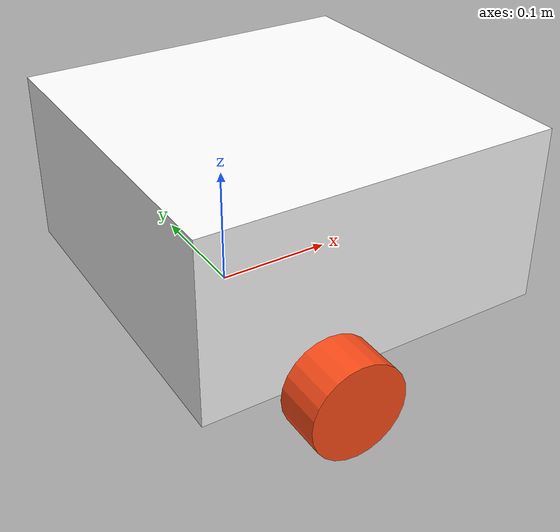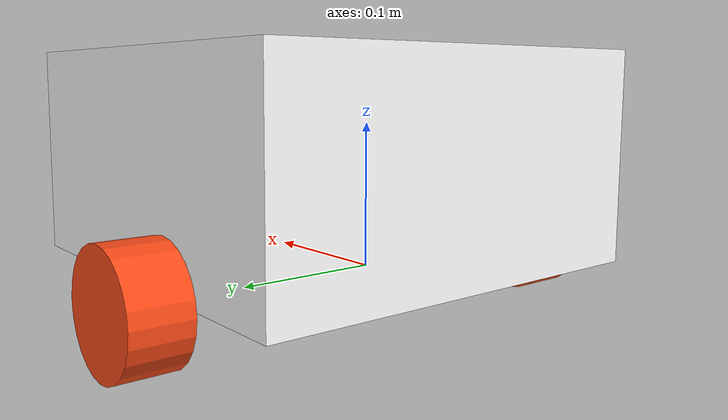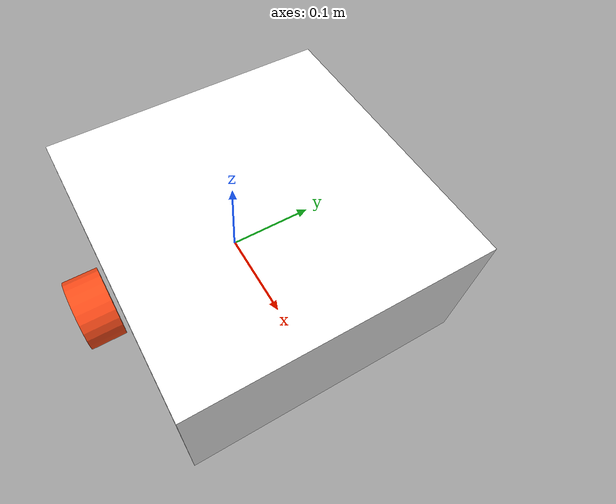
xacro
<?xml version="1.0"?>
<robot xmlns:xacro="http://www.ros.org/wiki/xacro">

    <!-- inertial macros -->
    <xacro:include filename="inertial_macros.xacro"/>

    <!-- materials -->
    <material name="white">
        <color rgba="1 1 1 1"/>
    </material>

    <material name="orange">
        <color rgba="1 0.3 0.1 1"/>
    </material>

    <material name="blue">
        <color rgba="0.2 0.2 1 1"/>
    </material>

    <material name="black">
        <color rgba="0 0 0 1"/>
    </material>

    <material name="red">
        <color rgba="1 0 0 1"/>
    </material>

    <!-- base link -->

    <link name="base_link">

    </link>

    <!-- Base Footprint -->

    <joint name="base_footprint_joint" type="fixed">
        <parent link="base_link"/>
        <child link="base_footprint"/>
        <origin xyz="0.0 0.0 0.0" rpy="0.0 0.0 0.0"/>
    </joint>

    <link name="base_footprint">

    </link>

    <!-- chassis joint and link -->
    <joint name="chassis_joint" type="fixed">
        <parent link="base_link"/>
        <child link="chassis"/>
        <origin  xyz="-0.1 0 0"/>
    </joint>

    <link name="chassis">
        <visual>
            <origin xyz="0.15 0.0 0.075"/>
            <geometry>
                <box size="0.3 0.3 0.15"/>
            </geometry>
            <material name="white"/>

        </visual>
        <collision>
            <origin xyz="0.15 0.0 0.075"/>
            <geometry>
                <box size="0.3 0.3 0.15"/>
            </geometry>
        </collision>
        <xacro:inertial_box mass="0.5" x="0.3" y="0.3" z="0.15">
            <origin xyz="0.15 0.0 0.075" rpy="0.0 0.0 0.0"/>
        </xacro:inertial_box>
    </link>

    <gazebo reference ="chassis">
        <material>
            Gazebo/White
        </material>
    </gazebo>

    <!-- left wheel joint and link -->

    <joint name="left_wheel_joint" type="continuous">
        <parent link="base_link"/>
        <child link="left_wheel"/>
        <origin xyz="0.0 0.175 0.0" rpy="-${pi/2} 0.0 0.0"/>
        <axis xyz="0.0 0.0 1.0"/>
    </joint>

    <link name="left_wheel">
        <visual>
            <origin xyz="0.0 0.0 0.0"/>
            <geometry>
                <cylinder radius="0.04" length="0.04"/>
            </geometry>
            <material name="orange"/>
        </visual>

        <collision>
            <geometry>
                <cylinder radius="0.04" length="0.04"/>
            </geometry>
        </collision>

        <xacro:inertial_cylinder mass = "0.1" length = "0.04" radius="0.04" >
            <origin xyz="0.0 0.0 0.0" rpy="0.0 0.0 0.0"/>
        </xacro:inertial_cylinder>
    </link>

    <gazebo reference ="left_wheel">
        <material>
            Gazebo/Orange
        </material>
    </gazebo>

    <!-- left wheel joint and link -->

    <joint name="right_wheel_joint" type="continuous">
        <parent link="base_link"/>
        <child link="right_wheel"/>
        <origin xyz="0.0 -0.175 0.0" rpy="${pi/2} 0.0 0.0"/>
        <axis xyz="0.0 0.0 -1.0"/>
    </joint>

    <link name="right_wheel">
        <visual>
            <origin xyz="0.0 0.0 0.0"/>
            <geometry>
                <cylinder radius="0.04" length="0.04"/>
            </geometry>
            <material name="orange"/>
        </visual>

        <collision>
            <geometry>
                <cylinder radius="0.04" length="0.04"/>
            </geometry>
        </collision>

        <xacro:inertial_cylinder mass = "0.1" length = "0.04" radius="0.04" >
            <origin xyz="0.0 0.0 0.0" rpy="0.0 0.0 0.0"/>
        </xacro:inertial_cylinder>
    </link>

    <gazebo reference ="right_wheel">
        <material>
            Gazebo/Orange
        </material>
    </gazebo>

    <!-- caster wheel joint and link -->

    <joint name="caster_wheel_joint" type="fixed">
        <parent link="chassis"/>
        <child link="caster_wheel"/>
        <origin xyz="0.24 0.0 0.0"/>
    </joint>

    <link name="caster_wheel">
        <visual>
            <geometry>
                <sphere radius="0.04"/>
            </geometry>
            <material name="blue"/>
        </visual>

        <collision>
            <geometry>
                <sphere radius="0.04"/>
            </geometry>
        </collision>

        <xacro:inertial_sphere mass="0.1" radius="0.04">
            <origin xyz="0.0 0.0 0.0" rpy="0.0 0.0 0.0"/>
        </xacro:inertial_sphere>
    </link>

    <gazebo reference ="caster_wheel">
        <material>
            Gazebo/Blue
        </material>
        <mu1 value = "0.001" />
        <mu2 value = "0.001" />

    </gazebo>

</robot>
